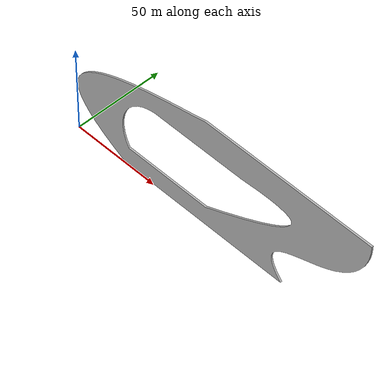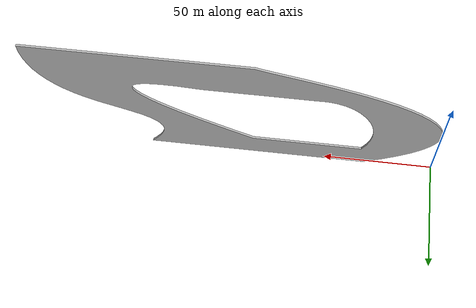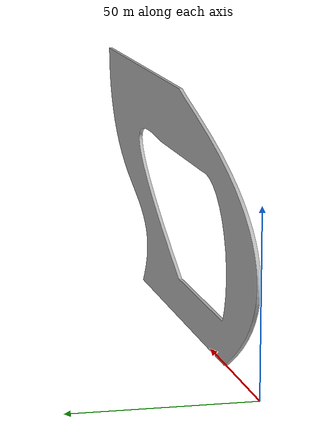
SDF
<?xml version="1.0" ?>
<sdf version="1.5">
    <model name="track">
        <pose>0 0 0.5 0 0 0</pose>
        <static>true</static>
        <link name="link">
            <collision name="collision">
                <geometry>
                    <mesh>
                        <uri>model://track/meshes/track.stl</uri>
                        <scale>1 1 1</scale>
                    </mesh>
                </geometry>
            </collision>
            <visual name="visual">
                <geometry>
                    <mesh>
                        <uri>model://track/meshes/track.stl</uri>
                        <scale>1 1 1</scale>
                    </mesh>
                </geometry>
            </visual>
        </link>
    </model>
</sdf>
